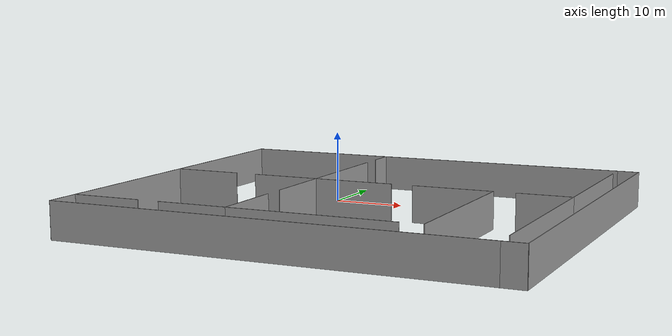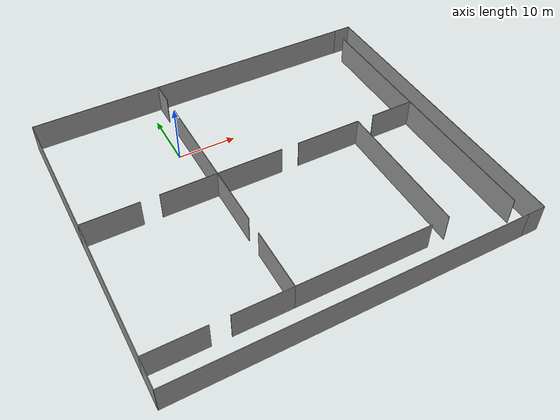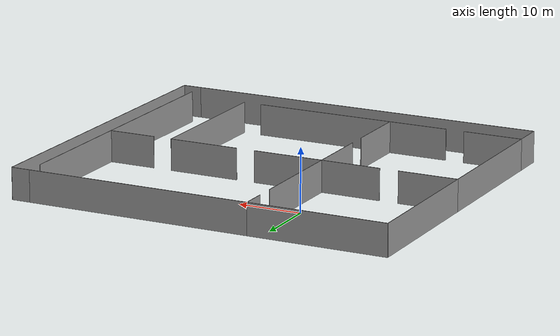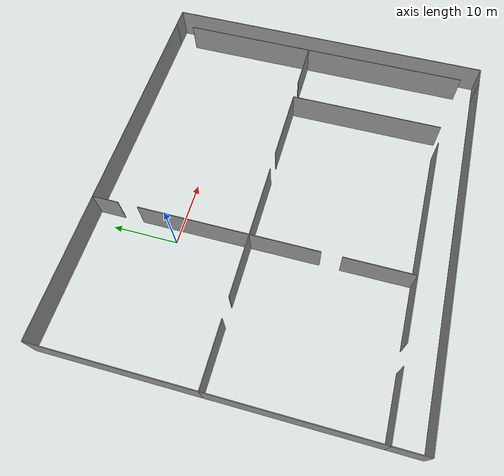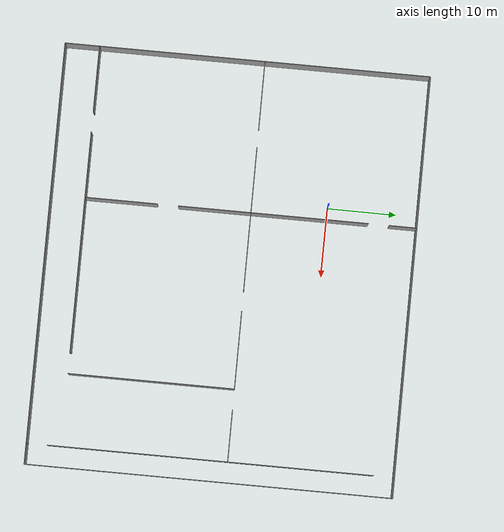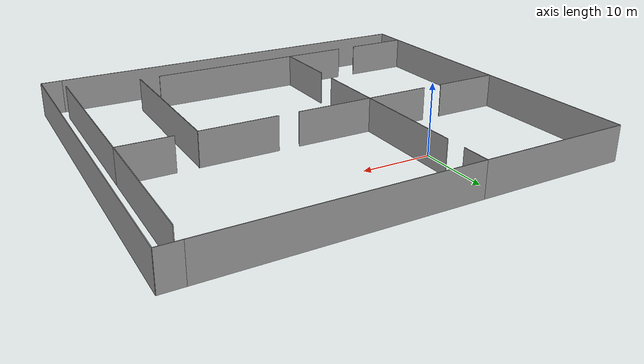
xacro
<?xml version="1.0"?>
<robot xmlns:xacro="http://www.ros.org/wiki/xacro"
       name="ipa-production-plant">

  <xacro:include filename="$(find cob_gazebo_worlds)/urdf/common.xacro" />
  <xacro:include filename="$(find cob_gazebo_worlds)/urdf/ipa-production-plant/ipa-production-plant.property.xacro" />

  <!-- walls -->
  <xacro:include filename="$(find cob_gazebo_worlds)/urdf/ipa-production-plant/walls.urdf.xacro" />

  <!-- Include Sensor file -->

  <!-- world link -->
  <link name="world" />

  <!-- Spawn Walls -->

  <!-- Spawn Walls -->
  <xacro:walls name="walls"/>

</robot>

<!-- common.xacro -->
<robot xmlns:xacro="http://www.ros.org/wiki/xacro">

  <xacro:property name="M_PI" value="3.1415926535897931" />

  <!-- see https://secure.wikimedia.org/wikipedia/en/wiki/List_of_moment_of_inertia_tensors -->
  <xacro:macro name="sphere_inertial" params="radius mass *origin">
    <inertial>
      <mass value="${mass}" />
      <xacro:insert_block name="origin" />
      <inertia ixx="${0.4 * mass * radius * radius}" ixy="0.0" ixz="0.0"
        iyy="${0.4 * mass * radius * radius}" iyz="0.0"
        izz="${0.4 * mass * radius * radius}" />
    </inertial>
  </xacro:macro>

  <xacro:macro name="cylinder_inertial" params="radius length mass *origin">
    <inertial>
      <mass value="${mass}" />
      <xacro:insert_block name="origin" />
      <inertia ixx="${0.0833333 * mass * (3 * radius * radius + length * length)}" ixy="0.0" ixz="0.0"
        iyy="${0.0833333 * mass * (3 * radius * radius + length * length)}" iyz="0.0"
        izz="${0.5 * mass * radius * radius}" />
    </inertial>
  </xacro:macro>

  <xacro:macro name="box_inertial" params="x y z mass *origin">
    <inertial>
      <mass value="${mass}" />
      <xacro:insert_block name="origin" />
      <inertia ixx="${0.0833333 * mass * (y*y + z*z)}" ixy="0.0" ixz="0.0"
        iyy="${0.0833333 * mass * (x*x + z*z)}" iyz="0.0"
        izz="${0.0833333 * mass * (x*x + y*y)}" />
    </inertial>
  </xacro:macro>

  <xacro:macro name="default_inertial">
    <inertial>
      <mass value="0.01"/>
      <origin xyz="0 0 0"/>
      <inertia ixx="0.001" ixy="0.0" ixz="0.0" iyy="0.001" iyz="0.0" izz="0.001" />
    </inertial>
  </xacro:macro>

</robot>

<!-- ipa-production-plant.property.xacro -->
<robot xmlns:xacro="http://www.ros.org/wiki/xacro">

  <!--properties-->
  <xacro:property name="wall_depth" value="0.1" />
  <xacro:property name="wall_height" value="5" />
  <xacro:property name="gate_size" value="3" />

  <xacro:property name="room1_w1" value="9.5" />
  <xacro:property name="room1_w2" value="9.5" />
  <xacro:property name="room1_w3" value="24" />

  <xacro:property name="room2_w1" value="22.5" />
  <xacro:property name="room2_w2" value="21" />

  <xacro:property name="room3_w1" value="24" />
  <xacro:property name="room3_w2" value="22" />

  <xacro:property name="room4_w1" value="36" />
  <xacro:property name="room4_w2" value="21" /> 24
  <xacro:property name="room4_w3" value="11.25" />
  <xacro:property name="room4_w4" value="7.5" />

  <xacro:property name="room1_room2_w1" value="10.5" />
  <xacro:property name="room1_room3_w1" value="9.5" />
  <xacro:property name="room2_room4_w1" value="11.25" />
  <xacro:property name="room3_room4_w1" value="17" />
  <xacro:property name="room3_room4_w2" value="4" />

  <xacro:property name="hallway_w1" value="26" />
  <xacro:property name="hallway_w2" value="58" />
  <xacro:property name="hallway_w3" value="5" />

  <xacro:property name="hallway2_w1" value="3" />
  <xacro:property name="hallway2_w2" value="53" />

  <xacro:property name="position_offset_x" value="-20" />
  <xacro:property name="position_offset_y" value="-35" />
  <xacro:property name="position_offset_z" value="0" />

</robot>

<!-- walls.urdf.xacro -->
<robot xmlns:xacro="http://www.ros.org/wiki/xacro">

  <xacro:macro name="walls" params="name">

  <!-- room1_w1 -->
  <!-- wall_01 -->
  <link name="wall_01">
    <xacro:box_inertial x="${wall_depth}" y= "${room1_w1}" z="${wall_height}" mass="500.0">
      <origin xyz="0 0 0" rpy="0 0 0" />
    </xacro:box_inertial>
    <visual>
      <origin xyz="0 0 0" />
      <geometry>
        <box size="${wall_depth} ${room1_w1} ${wall_height}" />
      </geometry>
      <material name="IPA/Grey"/>
    </visual>
    <collision>
      <origin xyz="0 0 0" />
      <geometry>
        <box size="${wall_depth} ${room1_w1} ${wall_height}" />
      </geometry>
    </collision>
  </link>

  <gazebo reference="wall_01">
    <material>wall_floor_05</material>
  </gazebo>

  <joint name="joint_wall_01" type="fixed">
    <origin xyz="${4.75+position_offset_x} ${position_offset_y} ${wall_height/2+position_offset_z}" rpy="0 0 ${90*M_PI/180}" />
    <parent link="world" />
    <child link="wall_01" />
  </joint>

  <!-- room1_w2 -->
  <!-- wall_02 -->
  <link name="wall_02">
    <xacro:box_inertial x="${wall_depth}" y="${room1_w2}" z="${wall_height}" mass="500.0">
      <origin xyz="0 0 0" rpy="0 0 0" />
    </xacro:box_inertial>
    <visual>
      <origin xyz="0 0 0" />
      <geometry>
        <box size="${wall_depth} ${room1_w2} ${wall_height}" />
      </geometry>
      <material name="IPA/Grey"/>
    </visual>
    <collision>
      <origin xyz="0 0 0" />
      <geometry>
        <box size="${wall_depth} ${room1_w2} ${wall_height}" />
      </geometry>
    </collision>
  </link>

  <gazebo reference="wall_02">
    <material>wall_floor_05</material>
  </gazebo>

  <joint name="joint_wall_02" type="fixed">
    <origin xyz="${17.25+position_offset_x} ${position_offset_y} ${wall_height/2+position_offset_z}" rpy="0 0 ${90*M_PI/180}" />
    <parent link="world" />
    <child link="wall_02" />
  </joint>

  <!-- room2_w1 -->
  <!-- wall_02b -->
  <link name="wall_02b">
    <xacro:box_inertial x="${wall_depth}" y="${room2_w1}" z="${wall_height}" mass="500.0">
      <origin xyz="0 0 0" rpy="0 0 0" />
    </xacro:box_inertial>
    <visual>
      <origin xyz="0 0 0" />
      <geometry>
        <box size="${wall_depth} ${room2_w1} ${wall_height}" />
      </geometry>
      <material name="IPA/Grey"/>
    </visual>
    <collision>
      <origin xyz="0 0 0" />
      <geometry>
        <box size="${wall_depth} ${room2_w1} ${wall_height}" />
      </geometry>
    </collision>
  </link>

  <gazebo reference="wall_02b">
    <material>wall_floor_05</material>
  </gazebo>

  <joint name="joint_wall_02b" type="fixed">
    <origin xyz="${33.25+position_offset_x} ${position_offset_y} ${wall_height/2+position_offset_z}" rpy="0 0 ${90*M_PI/180}" />
    <parent link="world" />
    <child link="wall_02b" />
  </joint>

  <!-- room1_w3 -->
  <!-- wall_03 -->
  <link name="wall_03">
    <xacro:box_inertial x="${wall_depth}" y="${room1_w3}" z="${wall_height}" mass="500.0">
      <origin xyz="0 0 0" rpy="0 0 0" />
    </xacro:box_inertial>
    <visual>
      <origin xyz="0 0 0" />
      <geometry>
        <box size="${wall_depth} ${room1_w3} ${wall_height}" />
      </geometry>
      <material name="IPA/Grey"/>
    </visual>
    <collision>
      <origin xyz="0 0 0" />
      <geometry>
        <box size="${wall_depth} ${room1_w3} ${wall_height}" />
      </geometry>
    </collision>
  </link>

  <gazebo reference="wall_03">
    <material>wall_floor_05</material>
  </gazebo>

  <joint name="joint_wall_03" type="fixed">
    <origin xyz="${position_offset_x} ${12+position_offset_y} ${wall_height/2+position_offset_z}" rpy="0 0 0" />
    <parent link="world" />
    <child link="wall_03" />
  </joint>

  <!-- room1_room2_w1 -->
  <!-- wall_04a -->
  <link name="wall_04a">
    <xacro:box_inertial x="${wall_depth}" y="${room1_room2_w1}" z="${wall_height}" mass="500.0">
      <origin xyz="0 0 0" rpy="0 0 0" />
    </xacro:box_inertial>
    <visual>
      <origin xyz="0 0 0" />
      <geometry>
        <box size="${wall_depth} ${room1_room2_w1} ${wall_height}" />
      </geometry>
      <material name="IPA/Grey"/>
    </visual>
    <collision>
      <origin xyz="0 0 0" />
      <geometry>
        <box size="${wall_depth} ${room1_room2_w1} ${wall_height}" />
      </geometry>
    </collision>
  </link>

  <gazebo reference="wall_04a">
    <material>wall_floor_05</material>
  </gazebo>

  <joint name="joint_wall_04a" type="fixed">
    <origin xyz="${22+position_offset_x} ${18.75+position_offset_y} ${wall_height/2+position_offset_z}" rpy="0 0 0" />
    <parent link="world" />
    <child link="wall_04a" />
  </joint>

    <!-- room1_room2_w1 -->
  <!-- wall_04b -->
  <link name="wall_04b">
    <xacro:box_inertial x="${wall_depth}" y="${room1_room2_w1}" z="${wall_height}" mass="500.0">
      <origin xyz="0 0 0" rpy="0 0 0" />
    </xacro:box_inertial>
    <visual>
      <origin xyz="0 0 0" />
      <geometry>
        <box size="${wall_depth} ${room1_room2_w1} ${wall_height}" />
      </geometry>
      <material name="IPA/Grey"/>
    </visual>
    <collision>
      <origin xyz="0 0 0" />
      <geometry>
        <box size="${wall_depth} ${room1_room2_w1} ${wall_height}" />
      </geometry>
    </collision>
  </link>

  <gazebo reference="wall_04b">
    <material>wall_floor_05</material>
  </gazebo>

  <joint name="joint_wall_04b" type="fixed">
    <origin xyz="${22+position_offset_x} ${5.25+position_offset_y} ${wall_height/2+position_offset_z}" rpy="0 0 0" />
    <parent link="world" />
    <child link="wall_04b" />
  </joint>

  <!-- room1_room3_w1 -->
  <!-- wall_06a -->
  <link name="wall_06a">
    <xacro:box_inertial x="${wall_depth}" y="${room1_room3_w1}" z="${wall_height}" mass="500.0">
      <origin xyz="0 0 0" rpy="0 0 0" />
    </xacro:box_inertial>
    <visual>
      <origin xyz="0 0 0" />
      <geometry>
        <box size="${wall_depth} ${room1_room3_w1} ${wall_height}" />
      </geometry>
      <material name="IPA/Grey"/>
    </visual>
    <collision>
      <origin xyz="0 0 0" />
      <geometry>
        <box size="${wall_depth} ${room1_room3_w1} ${wall_height}" />
      </geometry>
    </collision>
  </link>

  <gazebo reference="wall_06a">
    <material>wall_floor_05</material>
  </gazebo>

  <joint name="joint_wall_06a" type="fixed">
    <origin xyz="${4.75+position_offset_x} ${24+position_offset_y} ${wall_height/2+position_offset_z}" rpy="0 0 ${90*M_PI/180}" />
    <parent link="world" />
    <child link="wall_06a" />
  </joint>

  <!-- room1_room3_w1 -->
  <!-- wall_06b -->
  <link name="wall_06b">
    <xacro:box_inertial x="${wall_depth}" y="${room1_room3_w1}" z="${wall_height}" mass="500.0">
      <origin xyz="0 0 0" rpy="0 0 0" />
    </xacro:box_inertial>
    <visual>
      <origin xyz="0 0 0" />
      <geometry>
        <box size="${wall_depth} ${room1_room3_w1} ${wall_height}" />
      </geometry>
      <material name="IPA/Grey"/>
    </visual>
    <collision>
      <origin xyz="0 0 0" />
      <geometry>
        <box size="${wall_depth} ${room1_room3_w1} ${wall_height}" />
      </geometry>
    </collision>
  </link>

  <gazebo reference="wall_06b">
    <material>wall_floor_05</material>
  </gazebo>

  <joint name="joint_wall_06b" type="fixed">
    <origin xyz="${17.25+position_offset_x} ${24+position_offset_y} ${wall_height/2+position_offset_z}" rpy="0 0 ${90*M_PI/180}" />
    <parent link="world" />
    <child link="wall_06b" />
  </joint>

  <!-- room2_room4_w1 -->
  <!-- wall_07 -->
  <link name="wall_07">
    <xacro:box_inertial x="${wall_depth}" y="${room2_room4_w1}" z="${wall_height}" mass="500.0">
      <origin xyz="0 0 0" rpy="0 0 0" />
    </xacro:box_inertial>
    <visual>
      <origin xyz="0 0 0" />
      <geometry>
        <box size="${wall_depth} ${room2_room4_w1} ${wall_height}" />
      </geometry>
      <material name="IPA/Grey"/>
    </visual>
    <collision>
      <origin xyz="0 0 0" />
      <geometry>
        <box size="${wall_depth} ${room2_room4_w1} ${wall_height}" />
      </geometry>
    </collision>
  </link>

  <gazebo reference="wall_07">
    <material>wall_floor_05</material>
  </gazebo>

  <joint name="joint_wall_07" type="fixed">
    <origin xyz="${27.625+position_offset_x} ${24+position_offset_y} ${wall_height/2+position_offset_z}" rpy="0 0 ${90*M_PI/180}" />
    <parent link="world" />
    <child link="wall_07" />
  </joint>

  <!-- room4_w3 -->
  <!-- wall_08 -->
  <link name="wall_08">
    <xacro:box_inertial x="${wall_depth}" y="${room4_w3}" z="${wall_height}" mass="500.0">
      <origin xyz="0 0 0" rpy="0 0 0" />
    </xacro:box_inertial>
    <visual>
      <origin xyz="0 0 0" />
      <geometry>
        <box size="${wall_depth} ${room4_w3} ${wall_height}" />
      </geometry>
      <material name="IPA/Grey"/>
    </visual>
    <collision>
      <origin xyz="0 0 0" />
      <geometry>
        <box size="${wall_depth} ${room4_w3} ${wall_height}" />
      </geometry>
    </collision>
  </link>

  <gazebo reference="wall_08">
    <material>wall_floor_05</material>
  </gazebo>

  <joint name="joint_wall_08" type="fixed">
    <origin xyz="${41.875+position_offset_x} ${24+position_offset_y} ${wall_height/2+position_offset_z}" rpy="0 0 ${90*M_PI/180}" />
    <parent link="world" />
    <child link="wall_08" />
  </joint>

  <!-- room4_w4 -->
  <!-- wall_09 -->
  <link name="wall_09">
    <xacro:box_inertial x="${wall_depth}" y="${room4_w4}" z="${wall_height}" mass="500.0">
      <origin xyz="0 0 0" rpy="0 0 0" />
    </xacro:box_inertial>
    <visual>
      <origin xyz="0 0 0" />
      <geometry>
        <box size="${wall_depth} ${room4_w4} ${wall_height}" />
      </geometry>
      <material name="IPA/Grey"/>
    </visual>
    <collision>
      <origin xyz="0 0 0" />
      <geometry>
        <box size="${wall_depth} ${room4_w4} ${wall_height}" />
      </geometry>
    </collision>
  </link>

  <gazebo reference="wall_09">
    <material>wall_floor_05</material>
  </gazebo>

  <joint name="joint_wall_09" type="fixed">
    <origin xyz="${54.25+position_offset_x} ${24+position_offset_y} ${wall_height/2+position_offset_z}" rpy="0 0 ${90*M_PI/180}" />
    <parent link="world" />
    <child link="wall_09" />
  </joint>

  <!-- room3_w1 -->
  <!-- wall_10 -->
  <link name="wall_10">
    <xacro:box_inertial x="${wall_depth}" y="${room3_w1}" z="${wall_height}" mass="500.0">
      <origin xyz="0 0 0" rpy="0 0 0" />
    </xacro:box_inertial>
    <visual>
      <origin xyz="0 0 0" />
      <geometry>
        <box size="${wall_depth} ${room3_w1} ${wall_height}" />
      </geometry>
      <material name="IPA/Grey"/>
    </visual>
    <collision>
      <origin xyz="0 0 0" />
      <geometry>
        <box size="${wall_depth} ${room3_w1} ${wall_height}" />
      </geometry>
    </collision>
  </link>

  <gazebo reference="wall_10">
    <material>wall_floor_05</material>
  </gazebo>

  <joint name="joint_wall_10" type="fixed">
    <origin xyz="${position_offset_x} ${36+position_offset_y} ${wall_height/2+position_offset_z}" rpy="0 0 0" />
    <parent link="world" />
    <child link="wall_10" />
  </joint>

  <!-- room3_room4_w1 -->
  <!-- wall_11 -->
  <link name="wall_11">
    <xacro:box_inertial x="${wall_depth}" y="${room3_room4_w1}" z="${wall_height}" mass="500.0">
      <origin xyz="0 0 0" rpy="0 0 0" />
    </xacro:box_inertial>
    <visual>
      <origin xyz="0 0 0" />
      <geometry>
        <box size="${wall_depth} ${room3_room4_w1} ${wall_height}" />
      </geometry>
      <material name="IPA/Grey"/>
    </visual>
    <collision>
      <origin xyz="0 0 0" />
      <geometry>
        <box size="${wall_depth} ${room3_room4_w1} ${wall_height}" />
      </geometry>
    </collision>
  </link>

  <gazebo reference="wall_11">
    <material>wall_floor_05</material>
  </gazebo>

  <joint name="joint_wall_11" type="fixed">
    <origin xyz="${22+position_offset_x} ${32.5+position_offset_y} ${wall_height/2+position_offset_z}" rpy="0 0 0" />
    <parent link="world" />
    <child link="wall_11" />
  </joint>

  <!-- room4_w2 -->
  <!-- wall_12 -->
  <link name="wall_12">
    <xacro:box_inertial x="${wall_depth}" y="${room4_w2}" z="${wall_height}" mass="500.0">
      <origin xyz="0 0 0" rpy="0 0 0" />
    </xacro:box_inertial>
    <visual>
      <origin xyz="0 0 0" />
      <geometry>
        <box size="${wall_depth} ${room4_w2} ${wall_height}" />
      </geometry>
      <material name="IPA/Grey"/>
    </visual>
    <collision>
      <origin xyz="0 0 0" />
      <geometry>
        <box size="${wall_depth} ${room4_w2} ${wall_height}" />
      </geometry>
    </collision>
  </link>

  <gazebo reference="wall_12">
    <material>wall_floor_05</material>
  </gazebo>

  <joint name="joint_wall_12" type="fixed">
    <origin xyz="${58+position_offset_x} ${34.5+position_offset_y} ${wall_height/2+position_offset_z}" rpy="0 0 0" />
    <parent link="world" />
    <child link="wall_12" />
  </joint>

  <!-- room3_w2 -->
  <!-- wall_13 -->
  <link name="wall_13">
    <xacro:box_inertial x="${wall_depth}" y="${room3_w2}" z="${wall_height}" mass="500.0">
      <origin xyz="0 0 0" rpy="0 0 0" />
    </xacro:box_inertial>
    <visual>
      <origin xyz="0 0 0" />
      <geometry>
        <box size="${wall_depth} ${room3_w2} ${wall_height}" />
      </geometry>
      <material name="IPA/Grey"/>
    </visual>
    <collision>
      <origin xyz="0 0 0" />
      <geometry>
        <box size="${wall_depth} ${room3_w2} ${wall_height}" />
      </geometry>
    </collision>
  </link>

  <gazebo reference="wall_13">
    <material>wall_floor_05</material>
  </gazebo>

  <joint name="joint_wall_13" type="fixed">
    <origin xyz="${11+position_offset_x} ${48+position_offset_y} ${wall_height/2+position_offset_z}" rpy="0 0 ${90*M_PI/180}" />
    <parent link="world" />
    <child link="wall_13" />
  </joint>

  <!-- room4_w1 -->
  <!-- wall_14 -->
  <link name="wall_14">
    <xacro:box_inertial x="${wall_depth}" y="${room4_w1}" z="${wall_height}" mass="500.0">
      <origin xyz="0 0 0" rpy="0 0 0" />
    </xacro:box_inertial>
    <visual>
      <origin xyz="0 0 0" />
      <geometry>
        <box size="${wall_depth} ${room4_w1} ${wall_height}" />
      </geometry>
      <material name="IPA/Grey"/>
    </visual>
    <collision>
      <origin xyz="0 0 0" />
      <geometry>
        <box size="${wall_depth} ${room4_w1} ${wall_height}" />
      </geometry>
    </collision>
  </link>

  <gazebo reference="wall_14">
    <material>wall_floor_05</material>
  </gazebo>

  <joint name="joint_wall_14" type="fixed">
    <origin xyz="${40+position_offset_x} ${48+position_offset_y} ${wall_height/2+position_offset_z}" rpy="0 0 ${90*M_PI/180}" />
    <parent link="world" />
    <child link="wall_14" />
  </joint>

  <!-- hallway -->
  <!-- wall_15 -->
  <link name="wall_15">
    <xacro:box_inertial x="${wall_depth}" y="${room1_w3}" z="${wall_height}" mass="500.0">
      <origin xyz="0 0 0" rpy="0 0 0" />
    </xacro:box_inertial>
    <visual>
      <origin xyz="0 0 0" />
      <geometry>
        <box size="${wall_depth} ${room1_w3} ${wall_height}" />
      </geometry>
      <material name="IPA/Grey"/>
    </visual>
    <collision>
      <origin xyz="0 0 0" />
      <geometry>
        <box size="${wall_depth} ${room1_w3} ${wall_height}" />
      </geometry>
    </collision>
  </link>

  <gazebo reference="wall_15">
    <material>wall_floor_05</material>
  </gazebo>

  <joint name="joint_wall_15" type="fixed">
    <origin xyz="${47.5+position_offset_x} ${12+position_offset_y} ${wall_height/2+position_offset_z}" rpy="0 0 0" />
    <parent link="world" />
    <child link="wall_15" />
  </joint>

  <!-- hallway -->
  <!-- wall_16 -->
  <link name="wall_16">
    <xacro:box_inertial x="${wall_depth}" y="${hallway_w1}" z="${wall_height}" mass="500.0">
      <origin xyz="0 0 0" rpy="0 0 0" />
    </xacro:box_inertial>
    <visual>
      <origin xyz="0 0 0" />
      <geometry>
        <box size="${wall_depth} ${hallway_w1} ${wall_height}" />
      </geometry>
      <material name="IPA/Grey"/>
    </visual>
    <collision>
      <origin xyz="0 0 0" />
      <geometry>
        <box size="${wall_depth} ${hallway_w1} ${wall_height}" />
      </geometry>
    </collision>
  </link>

  <gazebo reference="wall_16">
    <material>wall_floor_05</material>
  </gazebo>

  <joint name="joint_wall_16" type="fixed">
    <origin xyz="${54.25+room4_w4/2+position_offset_x} ${11+position_offset_y} ${wall_height/2+position_offset_z}" rpy="0 0 0" />
    <parent link="world" />
    <child link="wall_16" />
  </joint>

  <!-- hallway -->
  <!-- wall_17 -->
  <link name="wall_17">
    <xacro:box_inertial x="${wall_depth}" y="${hallway_w2}" z="${wall_height}" mass="500.0">
      <origin xyz="0 0 0" rpy="0 0 0" />
    </xacro:box_inertial>
    <visual>
      <origin xyz="0 0 0" />
      <geometry>
        <box size="${wall_depth} ${hallway_w2} ${wall_height}" />
      </geometry>
      <material name="IPA/Grey"/>
    </visual>
    <collision>
      <origin xyz="0 0 0" />
      <geometry>
        <box size="${wall_depth} ${hallway_w2} ${wall_height}" />
      </geometry>
    </collision>
  </link>

  <gazebo reference="wall_17">
    <material>wall_floor_05</material>
  </gazebo>

  <joint name="joint_wall_17" type="fixed">
    <origin xyz="${hallway_w2/2+position_offset_x} ${-5+position_offset_y} ${wall_height/2+position_offset_z}" rpy="0 0 ${90*M_PI/180}" />
    <parent link="world" />
    <child link="wall_17" />
  </joint>

  <!-- hallway -->
  <!-- wall_18 -->
  <link name="wall_18">
    <xacro:box_inertial x="${wall_depth}" y="${hallway_w3}" z="${wall_height}" mass="500.0">
      <origin xyz="0 0 0" rpy="0 0 0" />
    </xacro:box_inertial>
    <visual>
      <origin xyz="0 0 0" />
      <geometry>
        <box size="${wall_depth} ${hallway_w3} ${wall_height}" />
      </geometry>
      <material name="IPA/Grey"/>
    </visual>
    <collision>
      <origin xyz="0 0 0" />
      <geometry>
        <box size="${wall_depth} ${hallway_w3} ${wall_height}" />
      </geometry>
    </collision>
  </link>

  <gazebo reference="wall_18">
    <material>wall_floor_05</material>
  </gazebo>

  <joint name="joint_wall_18" type="fixed">
    <origin xyz="${position_offset_x} ${-2.5+position_offset_y} ${wall_height/2+position_offset_z}" rpy="0 0 0" />
    <parent link="world" />
    <child link="wall_18" />
  </joint>

  <!-- room3_room4_w2 -->
  <!-- wall_19 -->
  <link name="wall_19">
    <xacro:box_inertial x="${wall_depth}" y="${room3_room4_w2}" z="${wall_height}" mass="500.0">
      <origin xyz="0 0 0" rpy="0 0 0" />
    </xacro:box_inertial>
    <visual>
      <origin xyz="0 0 0" />
      <geometry>
        <box size="${wall_depth} ${room3_room4_w2} ${wall_height}" />
      </geometry>
      <material name="IPA/Grey"/>
    </visual>
    <collision>
      <origin xyz="0 0 0" />
      <geometry>
        <box size="${wall_depth} ${room3_room4_w2} ${wall_height}" />
      </geometry>
    </collision>
  </link>

  <gazebo reference="wall_19">
    <material>wall_floor_05</material>
  </gazebo>

  <joint name="joint_wall_19" type="fixed">
    <origin xyz="${22+position_offset_x} ${46+position_offset_y} ${wall_height/2+position_offset_z}" rpy="0 0 0" />
    <parent link="world" />
    <child link="wall_19" />
  </joint>

  <!-- hallway2 -->
  <!-- wall_20 -->
  <link name="wall_20">
    <xacro:box_inertial x="${wall_depth}" y="${hallway2_w1}" z="${wall_height}" mass="500.0">
      <origin xyz="0 0 0" rpy="0 0 0" />
    </xacro:box_inertial>
    <visual>
      <origin xyz="0 0 0" />
      <geometry>
        <box size="${wall_depth} ${hallway2_w1} ${wall_height}" />
      </geometry>
      <material name="IPA/Grey"/>
    </visual>
    <collision>
      <origin xyz="0 0 0" />
      <geometry>
        <box size="${wall_depth} ${hallway2_w1} ${wall_height}" />
      </geometry>
    </collision>
  </link>

  <gazebo reference="wall_20">
    <material>wall_floor_05</material>
  </gazebo>

  <joint name="joint_wall_20" type="fixed">
    <origin xyz="${hallway_w2+hallway2_w1/2+position_offset_x} ${-5+position_offset_y} ${wall_height/2+position_offset_z}" rpy="0 0 ${90*M_PI/180}" />
    <parent link="world" />
    <child link="wall_20" />
  </joint>

  <!-- hallway2 -->
  <!-- wall_21 -->
  <link name="wall_21">
    <xacro:box_inertial x="${wall_depth}" y="${hallway2_w2}" z="${wall_height}" mass="500.0">
      <origin xyz="0 0 0" rpy="0 0 0" />
    </xacro:box_inertial>
    <visual>
      <origin xyz="0 0 0" />
      <geometry>
        <box size="${wall_depth} ${hallway2_w2} ${wall_height}" />
      </geometry>
      <material name="IPA/Grey"/>
    </visual>
    <collision>
      <origin xyz="0 0 0" />
      <geometry>
        <box size="${wall_depth} ${hallway2_w2} ${wall_height}" />
      </geometry>
    </collision>
  </link>

  <gazebo reference="wall_21">
    <material>wall_floor_05</material>
  </gazebo>

  <joint name="joint_wall_21" type="fixed">
    <origin xyz="${hallway_w2+hallway2_w1+position_offset_x} ${hallway2_w2/2-5+position_offset_y} ${wall_height/2+position_offset_z}" rpy="0 0 0" />
    <parent link="world" />
    <child link="wall_21" />
  </joint>

  <!-- hallway2 -->
  <!-- wall_22 -->
  <link name="wall_22">
    <xacro:box_inertial x="${wall_depth}" y="${hallway2_w1}" z="${wall_height}" mass="500.0">
      <origin xyz="0 0 0" rpy="0 0 0" />
    </xacro:box_inertial>
    <visual>
      <origin xyz="0 0 0" />
      <geometry>
        <box size="${wall_depth} ${hallway2_w1} ${wall_height}" />
      </geometry>
      <material name="IPA/Grey"/>
    </visual>
    <collision>
      <origin xyz="0 0 0" />
      <geometry>
        <box size="${wall_depth} ${hallway2_w1} ${wall_height}" />
      </geometry>
    </collision>
  </link>

  <gazebo reference="wall_22">
    <material>wall_floor_05</material>
  </gazebo>

  <joint name="joint_wall_22" type="fixed">
    <origin xyz="${hallway_w2+hallway2_w1/2+position_offset_x} ${-5+hallway2_w2+position_offset_y} ${wall_height/2+position_offset_z}" rpy="0 0 ${90*M_PI/180}" />
    <parent link="world" />
    <child link="wall_22" />
  </joint>

  </xacro:macro>

</robot>
